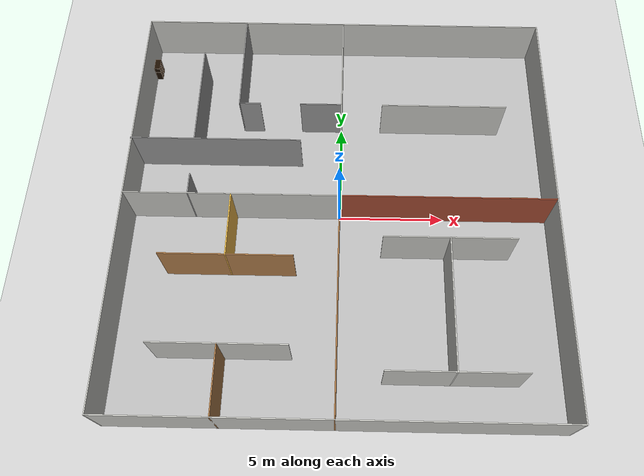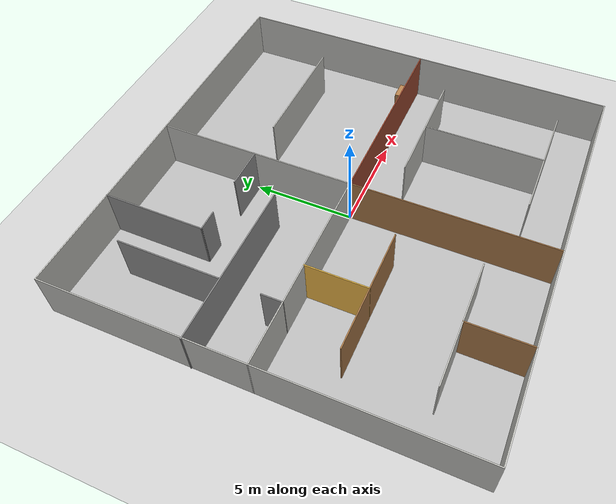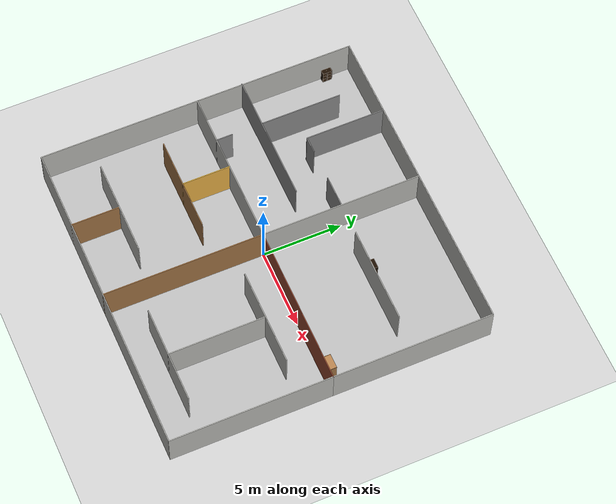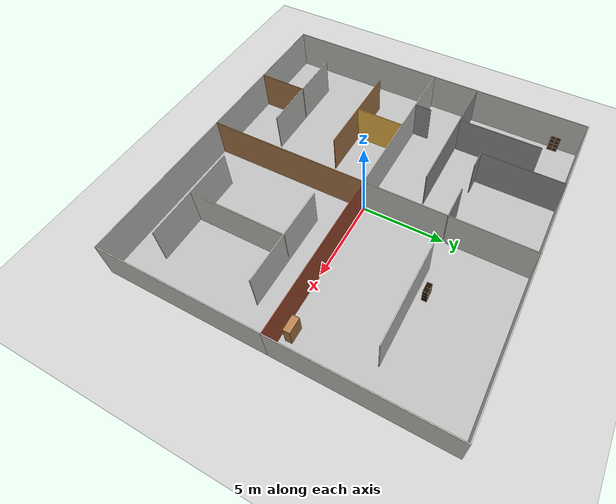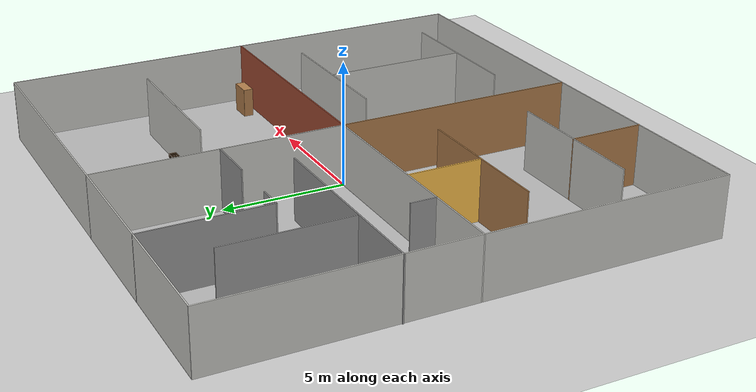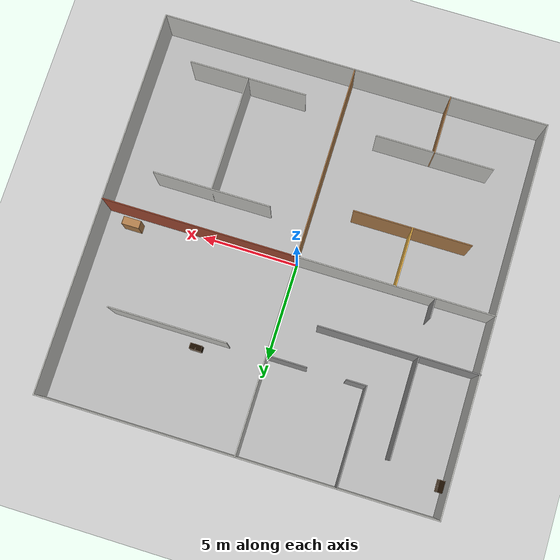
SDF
<sdf version="1.6">
 <world name="default">
  <light name="sun" type="directional">
   <pose>0 0 10 0 -0 0</pose>
   <diffuse>0.8 0.8 0.8 1</diffuse>
   <specular>0.1 0.1 0.1 1</specular>
   <attenuation>
    <range>1000</range>
    <constant>0.9</constant>
    <linear>0.01</linear>
    <quadratic>0.001</quadratic>
   </attenuation>
   <direction>-0.5 0.5 -1</direction>
  </light>
  <model name="ground_plane">
   <static>1</static>
   <link name="link">
    <collision name="collision">
     <geometry><plane><normal>0 0 1</normal><size>100 100</size></plane></geometry>
     <surface><friction><ode><mu>100</mu><mu2>50</mu2></ode></friction></surface>
    </collision>
    <visual name="visual">
     <cast_shadows>0</cast_shadows>
     <geometry><plane><normal>0 0 1</normal><size>100 100</size></plane></geometry>
     <material>
      <script><uri>file://media/materials/scripts/gazebo.material</uri><name>Gazebo/Grey</name></script>
     </material>
    </visual>
   </link>
  </model>
  <gravity>0 0 -9.8</gravity>
  <magnetic_field>6e-06 2.3e-05 -4.2e-05</magnetic_field>
  <atmosphere type="adiabatic"/>
  <physics name="default_physics" default="0" type="ode">
   <max_step_size>0.01</max_step_size>
   <real_time_factor>1</real_time_factor>
   <real_time_update_rate>200</real_time_update_rate>
  </physics>
  <scene><ambient>0.4 0.4 0.4 1</ambient><background>0.7 0.7 0.7 1</background><shadows>1</shadows></scene>
  <spherical_coordinates>
   <surface_model>EARTH_WGS84</surface_model>
   <latitude_deg>0</latitude_deg>
   <longitude_deg>0</longitude_deg>
   <elevation>0</elevation>
   <heading_deg>0</heading_deg>
  </spherical_coordinates>
  <model name="20x20_4_closed_room">
   <pose>-0.02058 -0.00401 0 0 -0 0</pose>
   <link name="Wall_12">
    <collision name="Wall_12_Collision">
     <geometry><box><size>10.05 0.05 2.5</size></box></geometry>
     <pose>0 0 1.25 0 -0 0</pose>
    </collision>
    <visual name="Wall_12_Visual">
     <pose>0 0 1.25 0 -0 0</pose>
     <geometry><box><size>10.05 0.05 2.5</size></box></geometry>
     <material>
      <script><uri>file://media/materials/scripts/gazebo.material</uri><name>Gazebo/CeilingTiled</name></script>
      <ambient>1 0.764706 0.305882 1</ambient>
     </material>
    </visual>
    <pose>10.0205 5.00012 0 0 0 -1.5708</pose>
   </link>
   <link name="Wall_13">
    <collision name="Wall_13_Collision">
     <geometry><box><size>10.05 0.05 2.5</size></box></geometry>
     <pose>0 0 1.25 0 -0 0</pose>
    </collision>
    <visual name="Wall_13_Visual">
     <pose>0 0 1.25 0 -0 0</pose>
     <geometry><box><size>10.05 0.05 2.5</size></box></geometry>
     <material>
      <script><uri>file://media/materials/scripts/gazebo.material</uri><name>Gazebo/Bricks</name></script>
      <ambient>0.996078 0.47451 0.0196078 1</ambient>
     </material>
    </visual>
    <pose>5.02047 0.000125 0 0 -0 3.14159</pose>
   </link>
   <link name="Wall_16">
    <collision name="Wall_16_Collision">
     <geometry><box><size>10.05 0.05 2.5</size></box></geometry>
     <pose>0 0 1.25 0 -0 0</pose>
    </collision>
    <visual name="Wall_16_Visual">
     <pose>0 0 1.25 0 -0 0</pose>
     <geometry><box><size>10.05 0.05 2.5</size></box></geometry>
     <material>
      <script><uri>file://media/materials/scripts/gazebo.material</uri><name>Gazebo/CeilingTiled</name></script>
      <ambient>0.435294 0.796078 0.67451 1</ambient>
     </material>
    </visual>
    <pose>-9.97953 -4.99988 0 0 0 -1.5708</pose>
   </link>
   <link name="Wall_17">
    <collision name="Wall_17_Collision">
     <geometry><box><size>10.05 0.05 2.5</size></box></geometry>
     <pose>0 0 1.25 0 -0 0</pose>
    </collision>
    <visual name="Wall_17_Visual">
     <pose>0 0 1.25 0 -0 0</pose>
     <geometry><box><size>10.05 0.05 2.5</size></box></geometry>
     <material>
      <script><uri>file://media/materials/scripts/gazebo.material</uri><name>Gazebo/CeilingTiled</name></script>
      <ambient>0.435294 0.796078 0.67451 1</ambient>
     </material>
    </visual>
    <pose>-4.97953 -9.99987 0 0 -0 0</pose>
   </link>
   <link name="Wall_18">
    <collision name="Wall_18_Collision">
     <geometry><box><size>10.0505 0.05 2.5</size></box></geometry>
     <pose>0 0 1.25 0 -0 0</pose>
    </collision>
    <visual name="Wall_18_Visual">
     <pose>0 0 1.25 0 -0 0</pose>
     <geometry><box><size>10.0505 0.05 2.5</size></box></geometry>
     <material>
      <script><uri>file://media/materials/scripts/gazebo.material</uri><name>Gazebo/Wood</name></script>
      <ambient>0.435294 0.796078 0.67451 1</ambient>
     </material>
    </visual>
    <pose>0.02047 -4.99988 0 0 -0 1.5708</pose>
   </link>
   <link name="Wall_20">
    <collision name="Wall_20_Collision">
     <geometry><box><size>10.05 0.05 2.5</size></box></geometry>
     <pose>0 0 1.25 0 -0 0</pose>
    </collision>
    <visual name="Wall_20_Visual">
     <pose>0 0 1.25 0 -0 0</pose>
     <geometry><box><size>10.05 0.05 2.5</size></box></geometry>
     <material>
      <script><uri>file://media/materials/scripts/gazebo.material</uri><name>Gazebo/CeilingTiled</name></script>
      <ambient>0.760784 0.662745 0.627451 1</ambient>
     </material>
    </visual>
    <pose>5.02047 -9.99987 0 0 -0 0</pose>
   </link>
   <link name="Wall_21">
    <collision name="Wall_21_Collision">
     <geometry><box><size>10.05 0.05 2.5</size></box></geometry>
     <pose>0 0 1.25 0 -0 0</pose>
    </collision>
    <visual name="Wall_21_Visual">
     <pose>0 0 1.25 0 -0 0</pose>
     <geometry><box><size>10.05 0.05 2.5</size></box></geometry>
     <material>
      <script><uri>file://media/materials/scripts/gazebo.material</uri><name>Gazebo/CeilingTiled</name></script>
      <ambient>0.760784 0.662745 0.627451 1</ambient>
     </material>
    </visual>
    <pose>10.0205 -4.99988 0 0 -0 1.5708</pose>
   </link>
   <link name="Wall_27">
    <collision name="Wall_27_Collision">
     <geometry><box><size>5.05025 0.05 2.5</size></box></geometry>
     <pose>0 0 1.25 0 -0 0</pose>
    </collision>
    <visual name="Wall_27_Visual">
     <pose>0 0 1.25 0 -0 0</pose>
     <geometry><box><size>5.05025 0.05 2.5</size></box></geometry>
     <material>
      <script><uri>file://media/materials/scripts/gazebo.material</uri><name>Gazebo/Grey</name></script>
      <ambient>1 1 1 1</ambient>
     </material>
    </visual>
    <pose>-6.97953 5.50012 0 0 -0 1.5708</pose>
   </link>
   <link name="Wall_29">
    <collision name="Wall_29_Collision">
     <geometry><box><size>5.05 0.05 2.5</size></box></geometry>
     <pose>0 0 1.25 0 -0 0</pose>
    </collision>
    <visual name="Wall_29_Visual">
     <pose>0 0 1.25 0 -0 0</pose>
     <geometry><box><size>5.05 0.05 2.5</size></box></geometry>
     <material>
      <script><uri>file://media/materials/scripts/gazebo.material</uri><name>Gazebo/Grey</name></script>
      <ambient>1 1 1 1</ambient>
     </material>
    </visual>
    <pose>-4.97953 7.50012 0 0 -0 1.5708</pose>
   </link>
   <link name="Wall_3">
    <collision name="Wall_3_Collision">
     <geometry><box><size>10.05 0.05 2.5</size></box></geometry>
     <pose>0 0 1.25 0 -0 0</pose>
    </collision>
    <visual name="Wall_3_Visual">
     <pose>0 0 1.25 0 -0 0</pose>
     <geometry><box><size>10.05 0.05 2.5</size></box></geometry>
     <material>
      <script><uri>file://media/materials/scripts/gazebo.material</uri><name>Gazebo/CeilingTiled</name></script>
      <ambient>1 1 1 1</ambient>
     </material>
    </visual>
    <pose>-4.97953 10.0001 0 0 -0 0</pose>
   </link>
   <link name="Wall_31">
    <collision name="Wall_31_Collision">
     <geometry><box><size>1.05 0.05 2.5</size></box></geometry>
     <pose>0 0 1.25 0 -0 0</pose>
    </collision>
    <visual name="Wall_31_Visual">
     <pose>0 0 1.25 0 -0 0</pose>
     <geometry><box><size>1.05 0.05 2.5</size></box></geometry>
     <material>
      <script><uri>file://media/materials/scripts/gazebo.material</uri><name>Gazebo/Grey</name></script>
      <ambient>1 1 1 1</ambient>
     </material>
    </visual>
    <pose>-4.47953 5.00012 0 0 -0 0</pose>
   </link>
   <link name="Wall_33">
    <collision name="Wall_33_Collision">
     <geometry><box><size>2.05 0.05 2.5</size></box></geometry>
     <pose>0 0 1.25 0 -0 0</pose>
    </collision>
    <visual name="Wall_33_Visual">
     <pose>0 0 1.25 0 -0 0</pose>
     <geometry><box><size>2.05 0.05 2.5</size></box></geometry>
     <material>
      <script><uri>file://media/materials/scripts/gazebo.material</uri><name>Gazebo/Grey</name></script>
      <ambient>1 1 1 1</ambient>
     </material>
    </visual>
    <pose>-0.97953 5.00012 0 0 -0 0</pose>
   </link>
   <link name="Wall_37">
    <collision name="Wall_37_Collision">
     <geometry><box><size>1.05 0.05 2.5</size></box></geometry>
     <pose>0 0 1.25 0 -0 0</pose>
    </collision>
    <visual name="Wall_37_Visual">
     <pose>0 0 1.25 0 -0 0</pose>
     <geometry><box><size>1.05 0.05 2.5</size></box></geometry>
     <material>
      <script><uri>file://media/materials/scripts/gazebo.material</uri><name>Gazebo/Grey</name></script>
      <ambient>1 1 1 1</ambient>
     </material>
    </visual>
    <pose>-6.97953 0.500125 0 0 0 -1.5708</pose>
   </link>
   <link name="Wall_39">
    <collision name="Wall_39_Collision">
     <geometry><box><size>8.14988 0.05 2.5</size></box></geometry>
     <pose>0 0 1.25 0 -0 0</pose>
    </collision>
    <visual name="Wall_39_Visual">
     <pose>0 0 1.25 0 -0 0</pose>
     <geometry><box><size>8.14988 0.05 2.5</size></box></geometry>
     <material>
      <script><uri>file://media/materials/scripts/gazebo.material</uri><name>Gazebo/Grey</name></script>
      <ambient>1 1 1 1</ambient>
     </material>
    </visual>
    <pose>-5.97053 2.93213 0 0 -0 0</pose>
   </link>
   <link name="Wall_4">
    <collision name="Wall_4_Collision">
     <geometry><box><size>10.05 0.05 2.5</size></box></geometry>
     <pose>0 0 1.25 0 -0 0</pose>
    </collision>
    <visual name="Wall_4_Visual">
     <pose>0 0 1.25 0 -0 0</pose>
     <geometry><box><size>10.05 0.05 2.5</size></box></geometry>
     <material>
      <script><uri>file://media/materials/scripts/gazebo.material</uri><name>Gazebo/CeilingTiled</name></script>
      <ambient>1 1 1 1</ambient>
     </material>
    </visual>
    <pose>0.02047 5.00012 0 0 0 -1.5708</pose>
   </link>
   <link name="Wall_43">
    <collision name="Wall_43_Collision">
     <geometry><box><size>6.05 0.05 2.5</size></box></geometry>
     <pose>0 0 1.25 0 -0 0</pose>
    </collision>
    <visual name="Wall_43_Visual">
     <pose>0 0 1.25 0 -0 0</pose>
     <geometry><box><size>6.05 0.05 2.5</size></box></geometry>
     <material>
      <script><uri>file://media/materials/scripts/gazebo.material</uri><name>Gazebo/CeilingTiled</name></script>
      <ambient>0.435294 0.796078 0.67451 1</ambient>
     </material>
    </visual>
    <pose>5.02047 5.00012 0 0 -0 0</pose>
   </link>
   <link name="Wall_5">
    <collision name="Wall_5_Collision">
     <geometry><box><size>10.05 0.05 2.5</size></box></geometry>
     <pose>0 0 1.25 0 -0 0</pose>
    </collision>
    <visual name="Wall_5_Visual">
     <pose>0 0 1.25 0 -0 0</pose>
     <geometry><box><size>10.05 0.05 2.5</size></box></geometry>
     <material>
      <script><uri>file://media/materials/scripts/gazebo.material</uri><name>Gazebo/CeilingTiled</name></script>
      <ambient>1 1 1 1</ambient>
     </material>
    </visual>
    <pose>-4.97953 0.000125 0 0 -0 3.14159</pose>
   </link>
   <link name="Wall_51">
    <collision name="Wall_51_Collision">
     <geometry><box><size>6.05 0.05 2.5</size></box></geometry>
     <pose>0 0 1.25 0 -0 0</pose>
    </collision>
    <visual name="Wall_51_Visual">
     <pose>0 0 1.25 0 -0 0</pose>
     <geometry><box><size>6.05 0.05 2.5</size></box></geometry>
     <material>
      <script><uri>file://media/materials/scripts/gazebo.material</uri><name>Gazebo/Wood</name></script>
      <ambient>1 1 1 1</ambient>
     </material>
    </visual>
    <pose>-4.97953 -2.99987 0 0 -0 0</pose>
   </link>
   <link name="Wall_54">
    <collision name="Wall_54_Collision">
     <geometry><box><size>3.05 0.05 2.5</size></box></geometry>
     <pose>0 0 1.25 0 -0 0</pose>
    </collision>
    <visual name="Wall_54_Visual">
     <pose>0 0 1.25 0 -0 0</pose>
     <geometry><box><size>3.05 0.05 2.5</size></box></geometry>
     <material>
      <script><uri>file://media/materials/scripts/gazebo.material</uri><name>Gazebo/Grey</name></script>
      <ambient>1 0.764706 0.305882 1</ambient>
     </material>
    </visual>
    <pose>-4.97953 -1.49988 0 0 0 -1.5708</pose>
   </link>
   <link name="Wall_6">
    <collision name="Wall_6_Collision">
     <geometry><box><size>10.05 0.05 2.5</size></box></geometry>
     <pose>0 0 1.25 0 -0 0</pose>
    </collision>
    <visual name="Wall_6_Visual">
     <pose>0 0 1.25 0 -0 0</pose>
     <geometry><box><size>10.05 0.05 2.5</size></box></geometry>
     <material>
      <script><uri>file://media/materials/scripts/gazebo.material</uri><name>Gazebo/CeilingTiled</name></script>
      <ambient>1 1 1 1</ambient>
     </material>
    </visual>
    <pose>-9.97953 5.00012 0 0 -0 1.5708</pose>
   </link>
   <link name="Wall_60">
    <collision name="Wall_60_Collision">
     <geometry><box><size>6.05 0.05 2.5</size></box></geometry>
     <pose>0 0 1.25 0 -0 0</pose>
    </collision>
    <visual name="Wall_60_Visual">
     <pose>0 0 1.25 0 -0 0</pose>
     <geometry><box><size>6.05 0.05 2.5</size></box></geometry>
     <material>
      <script><uri>file://media/materials/scripts/gazebo.material</uri><name>Gazebo/CeilingTiled</name></script>
      <ambient>0.760784 0.662745 0.627451 1</ambient>
     </material>
    </visual>
    <pose>-4.97953 -6.99988 0 0 -0 3.14159</pose>
   </link>
   <link name="Wall_62">
    <collision name="Wall_62_Collision">
     <geometry><box><size>3.05 0.05 2.5</size></box></geometry>
     <pose>0 0 1.25 0 -0 0</pose>
    </collision>
    <visual name="Wall_62_Visual">
     <pose>0 0 1.25 0 -0 0</pose>
     <geometry><box><size>3.05 0.05 2.5</size></box></geometry>
     <material>
      <script><uri>file://media/materials/scripts/gazebo.material</uri><name>Gazebo/Wood</name></script>
      <ambient>1 1 1 1</ambient>
     </material>
    </visual>
    <pose>-4.97953 -8.49987 0 0 -0 1.5708</pose>
   </link>
   <link name="Wall_65">
    <collision name="Wall_65_Collision">
     <geometry><box><size>6.05 0.05 2.5</size></box></geometry>
     <pose>0 0 1.25 0 -0 0</pose>
    </collision>
    <visual name="Wall_65_Visual">
     <pose>0 0 1.25 0 -0 0</pose>
     <geometry><box><size>6.05 0.05 2.5</size></box></geometry>
     <material>
      <script><uri>file://media/materials/scripts/gazebo.material</uri><name>Gazebo/CeilingTiled</name></script>
      <ambient>1 0.764706 0.305882 1</ambient>
     </material>
    </visual>
    <pose>5.02047 -7.99988 0 0 -0 0</pose>
   </link>
   <link name="Wall_67">
    <collision name="Wall_67_Collision">
     <geometry><box><size>6.05 0.05 2.5</size></box></geometry>
     <pose>0 0 1.25 0 -0 0</pose>
    </collision>
    <visual name="Wall_67_Visual">
     <pose>0 0 1.25 0 -0 0</pose>
     <geometry><box><size>6.05 0.05 2.5</size></box></geometry>
     <material>
      <script><uri>file://media/materials/scripts/gazebo.material</uri><name>Gazebo/CeilingTiled</name></script>
      <ambient>0.996078 0.47451 0.0196078 1</ambient>
     </material>
    </visual>
    <pose>5.02047 -4.99988 0 0 -0 1.5708</pose>
   </link>
   <link name="Wall_69">
    <collision name="Wall_69_Collision">
     <geometry><box><size>6.05 0.05 2.5</size></box></geometry>
     <pose>0 0 1.25 0 -0 0</pose>
    </collision>
    <visual name="Wall_69_Visual">
     <pose>0 0 1.25 0 -0 0</pose>
     <geometry><box><size>6.05 0.05 2.5</size></box></geometry>
     <material>
      <script><uri>file://media/materials/scripts/gazebo.material</uri><name>Gazebo/CeilingTiled</name></script>
      <ambient>1 1 1 1</ambient>
     </material>
    </visual>
    <pose>5.02047 -1.99988 0 0 -0 0</pose>
   </link>
   <link name="Wall_8">
    <collision name="Wall_8_Collision">
     <geometry><box><size>10.05 0.05 2.5</size></box></geometry>
     <pose>0 0 1.25 0 -0 0</pose>
    </collision>
    <visual name="Wall_8_Visual">
     <pose>0 0 1.25 0 -0 0</pose>
     <geometry><box><size>10.05 0.05 2.5</size></box></geometry>
     <material>
      <script><uri>file://media/materials/scripts/gazebo.material</uri><name>Gazebo/CeilingTiled</name></script>
      <ambient>1 0.764706 0.305882 1</ambient>
     </material>
    </visual>
    <pose>5.02047 10.0001 0 0 -0 0</pose>
   </link>
   <static>1</static>
  </model>
  <model name="Floor_room1">
   <link name="main">
    <pose>0 0 0.01 0 -0 0</pose>
    <collision name="main_Collision">
     <geometry><box><size>10 10 0.001</size></box></geometry>
     <surface><friction><ode><mu>100</mu><mu2>100</mu2></ode></friction></surface>
    </collision>
    <visual name="main_Visual">
     <geometry><box><size>10 10 0.001</size></box></geometry>
     <material>
      <script>
       <uri>file:///home/linhai/.gazebo/models/Floor_room1/materials/scripts</uri>
       <uri>file:///home/linhai/.gazebo/models/Floor_room1/materials/textures</uri>
       <name>floor_room1</name>
      </script>
     </material>
    </visual>
   </link>
   <static>1</static>
   <pose>5.00733 -5.02178 -0.01 0 -0 0</pose>
  </model>
  <model name="Floor_room2">
   <link name="main">
    <pose>0 0 0.01 0 -0 0</pose>
    <collision name="main_Collision">
     <geometry><box><size>10 10 0.001</size></box></geometry>
     <surface><friction><ode><mu>100</mu><mu2>100</mu2></ode></friction></surface>
    </collision>
    <visual name="main_Visual">
     <geometry><box><size>10 10 0.001</size></box></geometry>
     <material>
      <script>
       <uri>file:///home/linhai/.gazebo/models/Floor_room2/materials/scripts</uri>
       <uri>file:///home/linhai/.gazebo/models/Floor_room2/materials/textures</uri>
       <name>floor_room2</name>
      </script>
     </material>
    </visual>
   </link>
   <static>1</static>
   <pose>-4.9783 5.02752 -0.01 0 -0 0</pose>
  </model>
  <model name="Floor_room3">
   <link name="main">
    <pose>0 0 0.01 0 -0 0</pose>
    <collision name="main_Collision">
     <geometry><box><size>10 10 0.001</size></box></geometry>
     <surface><friction><ode><mu>100</mu><mu2>100</mu2></ode></friction></surface>
    </collision>
    <visual name="main_Visual">
     <geometry><box><size>10 10 0.001</size></box></geometry>
     <material>
      <script>
       <uri>file:///home/linhai/.gazebo/models/Floor_room3/materials/scripts</uri>
       <uri>file:///home/linhai/.gazebo/models/Floor_room3/materials/textures</uri>
       <name>floor_room3</name>
      </script>
     </material>
    </visual>
   </link>
   <static>1</static>
   <pose>-5.00295 -4.97669 -0.01 0 -0 0</pose>
  </model>
  <model name="Floor_room4">
   <link name="main">
    <pose>0 0 0.01 0 -0 0</pose>
    <collision name="main_Collision">
     <geometry><box><size>10 10 0.001</size></box></geometry>
     <surface><friction><ode><mu>100</mu><mu2>100</mu2></ode></friction></surface>
    </collision>
    <visual name="main_Visual">
     <geometry><box><size>10 10 0.001</size></box></geometry>
     <material>
      <script>
       <uri>file:///home/linhai/.gazebo/models/Floor_room4/materials/scripts</uri>
       <uri>file:///home/linhai/.gazebo/models/Floor_room4/materials/textures</uri>
       <name>floor_room4</name>
      </script>
     </material>
    </visual>
   </link>
   <static>1</static>
   <pose>4.99351 5.02183 -0.01 0 -0 0</pose>
  </model>
  <model name="6_Cube_StorageE">
   <link name="Wall_0">
    <pose>0 0 0.01 0 -0 0</pose>
    <inertial>
     <mass>1.6201</mass>
     <inertia><ixx>0.0119</ixx><iyy>0.0631</iyy><izz>0.0513</izz><ixy>0</ixy><ixz>0</ixz><iyz>0</iyz></inertia>
    </inertial>
    <collision name="Wall_0_Collision"><geometry><box><size>0.616 0.296 0.02</size></box></geometry></collision>
    <visual name="Wall_0_Visual">
     <geometry><box><size>0.616 0.296 0.02</size></box></geometry>
     <material>
      <script><uri>file://media/materials/scripts/gazebo.material</uri><name>Gazebo/Grey</name></script>
      <ambient>0.105882 0.0509804 0 1</ambient>
     </material>
    </visual>
   </link>
   <joint name="0_2" type="fixed">
    <pose>-0.308 0 0 0 -0 0</pose>
    <parent>Wall_2</parent>
    <child>Wall_0</child>
    <axis>
     <xyz>1 0 0</xyz>
     <use_parent_model_frame>0</use_parent_model_frame>
     <limit><lower>-1e+16</lower><upper>1e+16</upper></limit>
    </axis>
   </joint>
   <joint name="0_12" type="fixed">
    <parent>Wall_12</parent>
    <child>Wall_0</child>
    <axis>
     <xyz>0 0 1</xyz>
     <use_parent_model_frame>0</use_parent_model_frame>
     <limit><lower>-1e+16</lower><upper>1e+16</upper></limit>
    </axis>
   </joint>
   <joint name="0_4" type="fixed">
    <pose>0.308 0 0 0 -0 0</pose>
    <parent>Wall_4</parent>
    <child>Wall_0</child>
    <axis>
     <xyz>1 0 0</xyz>
     <use_parent_model_frame>0</use_parent_model_frame>
     <limit><lower>-1e+16</lower><upper>1e+16</upper></limit>
    </axis>
   </joint>
   <link name="Wall_10">
    <pose>0 0 0.61 0 -0 0</pose>
    <inertial>
     <mass>1.6201</mass>
     <inertia><ixx>0.0119</ixx><iyy>0.0631</iyy><izz>0.0513</izz><ixy>0</ixy><ixz>0</ixz><iyz>0</iyz></inertia>
    </inertial>
    <collision name="Wall_10_Collision"><geometry><box><size>0.616 0.296 0.02</size></box></geometry></collision>
    <visual name="Wall_10_Visual">
     <geometry><box><size>0.616 0.296 0.02</size></box></geometry>
     <material>
      <script><uri>file://media/materials/scripts/gazebo.material</uri><name>Gazebo/Grey</name></script>
      <ambient>0.105882 0.0509804 0 1</ambient>
     </material>
    </visual>
   </link>
   <joint name="10_2" type="fixed">
    <pose>-0.308 0 0 0 -0 0</pose>
    <parent>Wall_2</parent>
    <child>Wall_10</child>
    <axis>
     <xyz>1 0 0</xyz>
     <use_parent_model_frame>0</use_parent_model_frame>
     <limit><lower>-1e+16</lower><upper>1e+16</upper></limit>
    </axis>
   </joint>
   <joint name="10_12" type="fixed">
    <parent>Wall_12</parent>
    <child>Wall_10</child>
    <axis>
     <xyz>0 0 1</xyz>
     <use_parent_model_frame>0</use_parent_model_frame>
     <limit><lower>-1e+16</lower><upper>1e+16</upper></limit>
    </axis>
   </joint>
   <joint name="10_4" type="fixed">
    <pose>0.308 0 0 0 -0 0</pose>
    <parent>Wall_4</parent>
    <child>Wall_10</child>
    <axis>
     <xyz>1 0 0</xyz>
     <use_parent_model_frame>0</use_parent_model_frame>
     <limit><lower>-1e+16</lower><upper>1e+16</upper></limit>
    </axis>
   </joint>
   <link name="Wall_12">
    <pose>0 0 0.4575 0 -0 0</pose>
    <inertial>
     <mass>2.4065</mass>
     <inertia><ixx>0.0177</ixx><iyy>0.1855</iyy><izz>0.168</izz><ixy>0</ixy><ixz>0</ixz><iyz>0</iyz></inertia>
    </inertial>
    <collision name="Wall_12_Collision"><geometry><box><size>0.02 0.296 0.915</size></box></geometry></collision>
    <visual name="Wall_12_Visual">
     <geometry><box><size>0.02 0.296 0.915</size></box></geometry>
     <material>
      <script><uri>file://media/materials/scripts/gazebo.material</uri><name>Gazebo/Grey</name></script>
      <ambient>0.105882 0.0509804 0 1</ambient>
     </material>
    </visual>
   </link>
   <link name="Wall_2">
    <pose>-0.298 0 0.4575 0 -0 0</pose>
    <inertial>
     <mass>2.4065</mass>
     <inertia><ixx>0.0177</ixx><iyy>0.1855</iyy><izz>0.168</izz><ixy>0</ixy><ixz>0</ixz><iyz>0</iyz></inertia>
    </inertial>
    <collision name="Wall_2_Collision"><geometry><box><size>0.02 0.296 0.915</size></box></geometry></collision>
    <visual name="Wall_2_Visual">
     <geometry><box><size>0.02 0.296 0.915</size></box></geometry>
     <material>
      <script><uri>file://media/materials/scripts/gazebo.material</uri><name>Gazebo/Grey</name></script>
      <ambient>0.105882 0.0509804 0 1</ambient>
     </material>
    </visual>
   </link>
   <link name="Wall_4">
    <pose>0.298 0 0.4575 0 -0 0</pose>
    <inertial>
     <mass>2.4065</mass>
     <inertia><ixx>0.0177</ixx><iyy>0.1855</iyy><izz>0.168</izz><ixy>0</ixy><ixz>0</ixz><iyz>0</iyz></inertia>
    </inertial>
    <collision name="Wall_4_Collision"><geometry><box><size>0.02 0.296 0.915</size></box></geometry></collision>
    <visual name="Wall_4_Visual">
     <geometry><box><size>0.02 0.296 0.915</size></box></geometry>
     <material>
      <script><uri>file://media/materials/scripts/gazebo.material</uri><name>Gazebo/Grey</name></script>
      <ambient>0.105882 0.0509804 0 1</ambient>
     </material>
    </visual>
   </link>
   <link name="Wall_6">
    <pose>0 0 0.905 0 -0 0</pose>
    <inertial>
     <mass>1.6201</mass>
     <inertia><ixx>0.0119</ixx><iyy>0.0631</iyy><izz>0.0513</izz><ixy>0</ixy><ixz>0</ixz><iyz>0</iyz></inertia>
    </inertial>
    <collision name="Wall_6_Collision"><geometry><box><size>0.616 0.296 0.02</size></box></geometry></collision>
    <visual name="Wall_6_Visual">
     <geometry><box><size>0.616 0.296 0.02</size></box></geometry>
     <material>
      <script><uri>file://media/materials/scripts/gazebo.material</uri><name>Gazebo/Grey</name></script>
      <ambient>0.105882 0.0509804 0 1</ambient>
     </material>
    </visual>
   </link>
   <joint name="6_2" type="fixed">
    <pose>-0.308 0 0 0 -0 0</pose>
    <parent>Wall_2</parent>
    <child>Wall_6</child>
    <axis>
     <xyz>2 0 0</xyz>
     <use_parent_model_frame>0</use_parent_model_frame>
     <limit><lower>-1e+16</lower><upper>1e+16</upper></limit>
    </axis>
   </joint>
   <joint name="6_12" type="fixed">
    <parent>Wall_12</parent>
    <child>Wall_6</child>
    <axis>
     <xyz>0 0 1</xyz>
     <use_parent_model_frame>0</use_parent_model_frame>
     <limit><lower>-1e+16</lower><upper>1e+16</upper></limit>
    </axis>
   </joint>
   <joint name="6_4" type="fixed">
    <pose>0.308 0 0 0 -0 0</pose>
    <parent>Wall_4</parent>
    <child>Wall_6</child>
    <axis>
     <xyz>1 0 0</xyz>
     <use_parent_model_frame>0</use_parent_model_frame>
     <limit><lower>-1e+16</lower><upper>1e+16</upper></limit>
    </axis>
   </joint>
   <link name="Wall_8">
    <pose>0 0 0.305 0 -0 0</pose>
    <inertial>
     <mass>1.6201</mass>
     <inertia><ixx>0.0119</ixx><iyy>0.0631</iyy><izz>0.0513</izz><ixy>0</ixy><ixz>0</ixz><iyz>0</iyz></inertia>
    </inertial>
    <collision name="Wall_8_Collision"><geometry><box><size>0.616 0.296 0.02</size></box></geometry></collision>
    <visual name="Wall_8_Visual">
     <geometry><box><size>0.616 0.296 0.02</size></box></geometry>
     <material>
      <script><uri>file://media/materials/scripts/gazebo.material</uri><name>Gazebo/Grey</name></script>
      <ambient>0.105882 0.0509804 0 1</ambient>
     </material>
    </visual>
   </link>
   <joint name="8_2" type="fixed">
    <pose>-0.308 0 0 0 -0 0</pose>
    <parent>Wall_2</parent>
    <child>Wall_8</child>
    <axis>
     <xyz>1 0 0</xyz>
     <use_parent_model_frame>0</use_parent_model_frame>
     <limit><lower>-1e+16</lower><upper>1e+16</upper></limit>
    </axis>
   </joint>
   <joint name="8_12" type="fixed">
    <parent>Wall_12</parent>
    <child>Wall_8</child>
    <axis>
     <xyz>0 0 1</xyz>
     <use_parent_model_frame>0</use_parent_model_frame>
     <limit><lower>-1e+16</lower><upper>1e+16</upper></limit>
    </axis>
   </joint>
   <joint name="8_4" type="fixed">
    <pose>0.308 0 0 0 -0 0</pose>
    <parent>Wall_4</parent>
    <child>Wall_8</child>
    <axis>
     <xyz>1 0 0</xyz>
     <use_parent_model_frame>0</use_parent_model_frame>
     <limit><lower>-1e+16</lower><upper>1e+16</upper></limit>
    </axis>
   </joint>
   <static>1</static>
   <pose>-9.83964 8.47093 0 0 0 -1.5585</pose>
  </model>
  <model name="6_Cube_StorageE_0">
   <link name="Wall_0">
    <pose>0 0 0.01 0 -0 0</pose>
    <inertial>
     <mass>1.6201</mass>
     <inertia><ixx>0.0119</ixx><iyy>0.0631</iyy><izz>0.0513</izz><ixy>0</ixy><ixz>0</ixz><iyz>0</iyz></inertia>
    </inertial>
    <collision name="Wall_0_Collision"><geometry><box><size>0.616 0.296 0.02</size></box></geometry></collision>
    <visual name="Wall_0_Visual">
     <geometry><box><size>0.616 0.296 0.02</size></box></geometry>
     <material>
      <script><uri>file://media/materials/scripts/gazebo.material</uri><name>Gazebo/Grey</name></script>
      <ambient>0.105882 0.0509804 0 1</ambient>
     </material>
    </visual>
   </link>
   <joint name="0_2" type="fixed">
    <pose>-0.308 0 0 0 -0 0</pose>
    <parent>Wall_2</parent>
    <child>Wall_0</child>
    <axis>
     <xyz>1 0 0</xyz>
     <use_parent_model_frame>0</use_parent_model_frame>
     <limit><lower>-1e+16</lower><upper>1e+16</upper></limit>
    </axis>
   </joint>
   <joint name="0_12" type="fixed">
    <parent>Wall_12</parent>
    <child>Wall_0</child>
    <axis>
     <xyz>0 0 1</xyz>
     <use_parent_model_frame>0</use_parent_model_frame>
     <limit><lower>-1e+16</lower><upper>1e+16</upper></limit>
    </axis>
   </joint>
   <joint name="0_4" type="fixed">
    <pose>0.308 0 0 0 -0 0</pose>
    <parent>Wall_4</parent>
    <child>Wall_0</child>
    <axis>
     <xyz>1 0 0</xyz>
     <use_parent_model_frame>0</use_parent_model_frame>
     <limit><lower>-1e+16</lower><upper>1e+16</upper></limit>
    </axis>
   </joint>
   <link name="Wall_10">
    <pose>0 0 0.61 0 -0 0</pose>
    <inertial>
     <mass>1.6201</mass>
     <inertia><ixx>0.0119</ixx><iyy>0.0631</iyy><izz>0.0513</izz><ixy>0</ixy><ixz>0</ixz><iyz>0</iyz></inertia>
    </inertial>
    <collision name="Wall_10_Collision"><geometry><box><size>0.616 0.296 0.02</size></box></geometry></collision>
    <visual name="Wall_10_Visual">
     <geometry><box><size>0.616 0.296 0.02</size></box></geometry>
     <material>
      <script><uri>file://media/materials/scripts/gazebo.material</uri><name>Gazebo/Grey</name></script>
      <ambient>0.105882 0.0509804 0 1</ambient>
     </material>
    </visual>
   </link>
   <joint name="10_2" type="fixed">
    <pose>-0.308 0 0 0 -0 0</pose>
    <parent>Wall_2</parent>
    <child>Wall_10</child>
    <axis>
     <xyz>1 0 0</xyz>
     <use_parent_model_frame>0</use_parent_model_frame>
     <limit><lower>-1e+16</lower><upper>1e+16</upper></limit>
    </axis>
   </joint>
   <joint name="10_12" type="fixed">
    <parent>Wall_12</parent>
    <child>Wall_10</child>
    <axis>
     <xyz>0 0 1</xyz>
     <use_parent_model_frame>0</use_parent_model_frame>
     <limit><lower>-1e+16</lower><upper>1e+16</upper></limit>
    </axis>
   </joint>
   <joint name="10_4" type="fixed">
    <pose>0.308 0 0 0 -0 0</pose>
    <parent>Wall_4</parent>
    <child>Wall_10</child>
    <axis>
     <xyz>1 0 0</xyz>
     <use_parent_model_frame>0</use_parent_model_frame>
     <limit><lower>-1e+16</lower><upper>1e+16</upper></limit>
    </axis>
   </joint>
   <link name="Wall_12">
    <pose>0 0 0.4575 0 -0 0</pose>
    <inertial>
     <mass>2.4065</mass>
     <inertia><ixx>0.0177</ixx><iyy>0.1855</iyy><izz>0.168</izz><ixy>0</ixy><ixz>0</ixz><iyz>0</iyz></inertia>
    </inertial>
    <collision name="Wall_12_Collision"><geometry><box><size>0.02 0.296 0.915</size></box></geometry></collision>
    <visual name="Wall_12_Visual">
     <geometry><box><size>0.02 0.296 0.915</size></box></geometry>
     <material>
      <script><uri>file://media/materials/scripts/gazebo.material</uri><name>Gazebo/Grey</name></script>
      <ambient>0.105882 0.0509804 0 1</ambient>
     </material>
    </visual>
   </link>
   <link name="Wall_2">
    <pose>-0.298 0 0.4575 0 -0 0</pose>
    <inertial>
     <mass>2.4065</mass>
     <inertia><ixx>0.0177</ixx><iyy>0.1855</iyy><izz>0.168</izz><ixy>0</ixy><ixz>0</ixz><iyz>0</iyz></inertia>
    </inertial>
    <collision name="Wall_2_Collision"><geometry><box><size>0.02 0.296 0.915</size></box></geometry></collision>
    <visual name="Wall_2_Visual">
     <geometry><box><size>0.02 0.296 0.915</size></box></geometry>
     <material>
      <script><uri>file://media/materials/scripts/gazebo.material</uri><name>Gazebo/Grey</name></script>
      <ambient>0.105882 0.0509804 0 1</ambient>
     </material>
    </visual>
   </link>
   <link name="Wall_4">
    <pose>0.298 0 0.4575 0 -0 0</pose>
    <inertial>
     <mass>2.4065</mass>
     <inertia><ixx>0.0177</ixx><iyy>0.1855</iyy><izz>0.168</izz><ixy>0</ixy><ixz>0</ixz><iyz>0</iyz></inertia>
    </inertial>
    <collision name="Wall_4_Collision"><geometry><box><size>0.02 0.296 0.915</size></box></geometry></collision>
    <visual name="Wall_4_Visual">
     <geometry><box><size>0.02 0.296 0.915</size></box></geometry>
     <material>
      <script><uri>file://media/materials/scripts/gazebo.material</uri><name>Gazebo/Grey</name></script>
      <ambient>0.105882 0.0509804 0 1</ambient>
     </material>
    </visual>
   </link>
   <link name="Wall_6">
    <pose>0 0 0.905 0 -0 0</pose>
    <inertial>
     <mass>1.6201</mass>
     <inertia><ixx>0.0119</ixx><iyy>0.0631</iyy><izz>0.0513</izz><ixy>0</ixy><ixz>0</ixz><iyz>0</iyz></inertia>
    </inertial>
    <collision name="Wall_6_Collision"><geometry><box><size>0.616 0.296 0.02</size></box></geometry></collision>
    <visual name="Wall_6_Visual">
     <geometry><box><size>0.616 0.296 0.02</size></box></geometry>
     <material>
      <script><uri>file://media/materials/scripts/gazebo.material</uri><name>Gazebo/Grey</name></script>
      <ambient>0.105882 0.0509804 0 1</ambient>
     </material>
    </visual>
   </link>
   <joint name="6_2" type="fixed">
    <pose>-0.308 0 0 0 -0 0</pose>
    <parent>Wall_2</parent>
    <child>Wall_6</child>
    <axis>
     <xyz>2 0 0</xyz>
     <use_parent_model_frame>0</use_parent_model_frame>
     <limit><lower>-1e+16</lower><upper>1e+16</upper></limit>
    </axis>
   </joint>
   <joint name="6_12" type="fixed">
    <parent>Wall_12</parent>
    <child>Wall_6</child>
    <axis>
     <xyz>0 0 1</xyz>
     <use_parent_model_frame>0</use_parent_model_frame>
     <limit><lower>-1e+16</lower><upper>1e+16</upper></limit>
    </axis>
   </joint>
   <joint name="6_4" type="fixed">
    <pose>0.308 0 0 0 -0 0</pose>
    <parent>Wall_4</parent>
    <child>Wall_6</child>
    <axis>
     <xyz>1 0 0</xyz>
     <use_parent_model_frame>0</use_parent_model_frame>
     <limit><lower>-1e+16</lower><upper>1e+16</upper></limit>
    </axis>
   </joint>
   <link name="Wall_8">
    <pose>0 0 0.305 0 -0 0</pose>
    <inertial>
     <mass>1.6201</mass>
     <inertia><ixx>0.0119</ixx><iyy>0.0631</iyy><izz>0.0513</izz><ixy>0</ixy><ixz>0</ixz><iyz>0</iyz></inertia>
    </inertial>
    <collision name="Wall_8_Collision"><geometry><box><size>0.616 0.296 0.02</size></box></geometry></collision>
    <visual name="Wall_8_Visual">
     <geometry><box><size>0.616 0.296 0.02</size></box></geometry>
     <material>
      <script><uri>file://media/materials/scripts/gazebo.material</uri><name>Gazebo/Grey</name></script>
      <ambient>0.105882 0.0509804 0 1</ambient>
     </material>
    </visual>
   </link>
   <joint name="8_2" type="fixed">
    <pose>-0.308 0 0 0 -0 0</pose>
    <parent>Wall_2</parent>
    <child>Wall_8</child>
    <axis>
     <xyz>1 0 0</xyz>
     <use_parent_model_frame>0</use_parent_model_frame>
     <limit><lower>-1e+16</lower><upper>1e+16</upper></limit>
    </axis>
   </joint>
   <joint name="8_12" type="fixed">
    <parent>Wall_12</parent>
    <child>Wall_8</child>
    <axis>
     <xyz>0 0 1</xyz>
     <use_parent_model_frame>0</use_parent_model_frame>
     <limit><lower>-1e+16</lower><upper>1e+16</upper></limit>
    </axis>
   </joint>
   <joint name="8_4" type="fixed">
    <pose>0.308 0 0 0 -0 0</pose>
    <parent>Wall_4</parent>
    <child>Wall_8</child>
    <axis>
     <xyz>1 0 0</xyz>
     <use_parent_model_frame>0</use_parent_model_frame>
     <limit><lower>-1e+16</lower><upper>1e+16</upper></limit>
    </axis>
   </joint>
   <static>1</static>
   <pose>3.54149 5.51234 0 0 -0 0</pose>
  </model>
  <model name="bookshelf">
   <static>1</static>
   <link name="link">
    <inertial><mass>1</mass></inertial>
    <collision name="back">
     <pose>0 0.005 0.6 0 -0 0</pose>
     <geometry><box><size>0.9 0.01 1.2</size></box></geometry>
    </collision>
    <visual name="visual1">
     <pose>0 0.005 0.6 0 -0 0</pose>
     <geometry><box><size>0.9 0.01 1.2</size></box></geometry>
     <material>
      <script><uri>file://media/materials/scripts/gazebo.material</uri><name>Gazebo/Wood</name></script>
     </material>
    </visual>
    <collision name="left_side">
     <pose>0.45 -0.195 0.6 0 -0 0</pose>
     <geometry><box><size>0.02 0.4 1.2</size></box></geometry>
    </collision>
    <visual name="visual2">
     <pose>0.45 -0.195 0.6 0 -0 0</pose>
     <geometry><box><size>0.02 0.4 1.2</size></box></geometry>
     <material>
      <script><uri>file://media/materials/scripts/gazebo.material</uri><name>Gazebo/Wood</name></script>
     </material>
    </visual>
    <collision name="right_side">
     <pose>-0.45 -0.195 0.6 0 -0 0</pose>
     <geometry><box><size>0.02 0.4 1.2</size></box></geometry>
    </collision>
    <visual name="visual3">
     <pose>-0.45 -0.195 0.6 0 -0 0</pose>
     <geometry><box><size>0.02 0.4 1.2</size></box></geometry>
     <material>
      <script><uri>file://media/materials/scripts/gazebo.material</uri><name>Gazebo/Wood</name></script>
     </material>
    </visual>
    <collision name="bottom">
     <pose>0 -0.195 0.03 0 -0 0</pose>
     <geometry><box><size>0.88 0.4 0.06</size></box></geometry>
    </collision>
    <visual name="visual4">
     <pose>0 -0.195 0.03 0 -0 0</pose>
     <geometry><box><size>0.88 0.4 0.06</size></box></geometry>
     <material>
      <script><uri>file://media/materials/scripts/gazebo.material</uri><name>Gazebo/Wood</name></script>
     </material>
    </visual>
    <collision name="top">
     <pose>0 -0.195 1.19 0 -0 0</pose>
     <geometry><box><size>0.88 0.4 0.02</size></box></geometry>
    </collision>
    <visual name="visual5">
     <pose>0 -0.195 1.19 0 -0 0</pose>
     <geometry><box><size>0.88 0.4 0.02</size></box></geometry>
     <material>
      <script><uri>file://media/materials/scripts/gazebo.material</uri><name>Gazebo/Wood</name></script>
     </material>
    </visual>
    <collision name="low_shelf">
     <pose>0 -0.195 0.43 0 -0 0</pose>
     <geometry><box><size>0.88 0.4 0.02</size></box></geometry>
    </collision>
    <visual name="visual6">
     <pose>0 -0.195 0.43 0 -0 0</pose>
     <geometry><box><size>0.88 0.4 0.02</size></box></geometry>
     <material>
      <script><uri>file://media/materials/scripts/gazebo.material</uri><name>Gazebo/Wood</name></script>
     </material>
    </visual>
    <collision name="high_shelf">
     <pose>0 -0.195 0.8 0 -0 0</pose>
     <geometry><box><size>0.88 0.4 0.02</size></box></geometry>
    </collision>
    <visual name="visual7">
     <pose>0 -0.195 0.8 0 -0 0</pose>
     <geometry><box><size>0.88 0.4 0.02</size></box></geometry>
     <material>
      <script><uri>file://media/materials/scripts/gazebo.material</uri><name>Gazebo/Wood</name></script>
     </material>
    </visual>
   </link>
   <pose>8.5224 0.705137 0 0 -0 0</pose>
  </model>
 </world>
</sdf>
